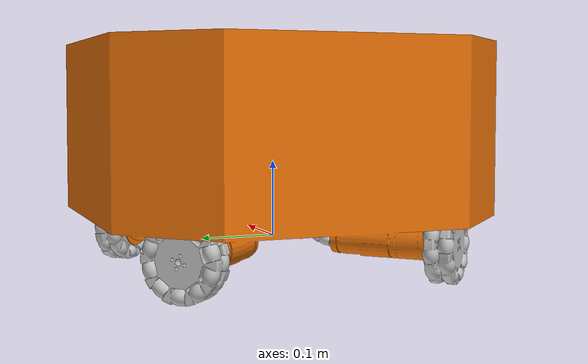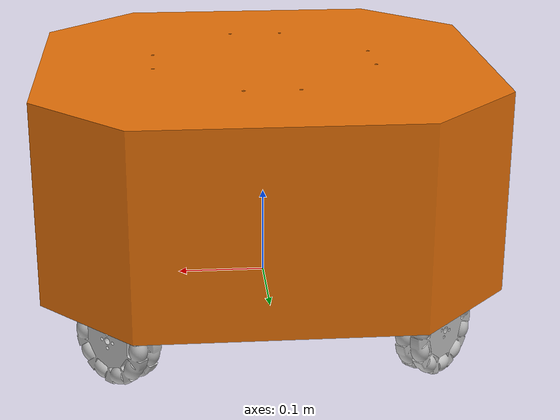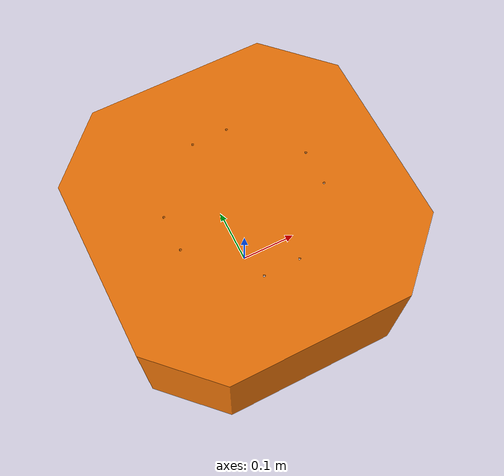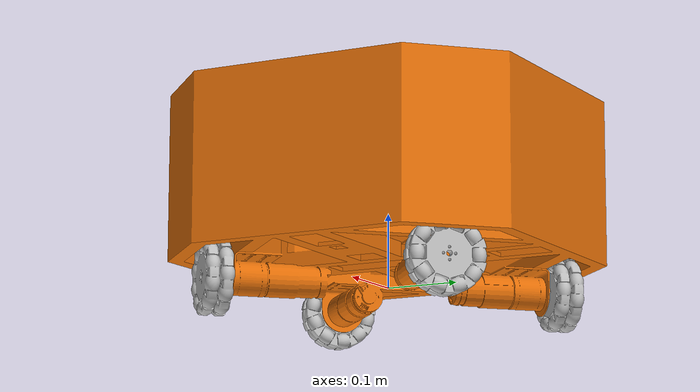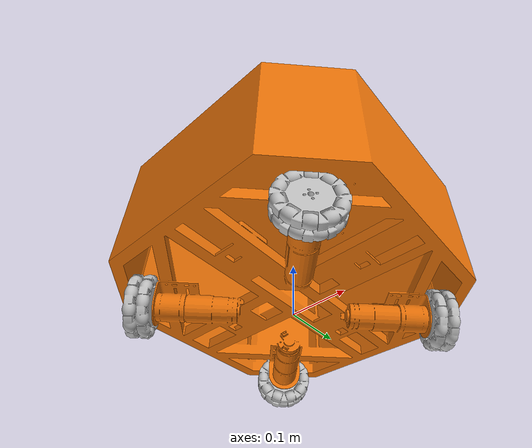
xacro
<?xml version="1.0" encoding="utf-8"?>
<robot xmlns:xacro="http://www.ros.org/wiki/xacro"
  name="assem4">
  <link
    name="base_link">
    <inertial>
      <origin
        xyz="-0.00097158991392642 0.141238649004559 9.0616641219611E-07"
        rpy="0 0 0" />
      <mass
        value="6.18799139893662" />
      <inertia
        ixx="0.190975821617679"
        ixy="4.01901385521376E-08"
        ixz="-5.59571623095739E-08"
        iyy="0.328722262102599"
        iyz="1.23706839134612E-07"
        izz="0.190967615693658" />
    </inertial>
    <visual>
      <origin
        xyz="0 0 0"
        rpy="0 0 0" />
      <geometry>
        <mesh
          filename="package://assem4/meshes/base.stl" />
      </geometry>
      <material
        name="">
        <color
          rgba="0.909803921568627 0.443137254901961 0.0313725490196078 1" />
      </material>
    </visual>
    <collision>
      <origin
        xyz="0 0 0"
        rpy="0 0 0" />
      <geometry>
        <mesh
          filename="package://assem4/meshes/base.stl" />
      </geometry>
    </collision>
  </link>
  <link
    name="roda_1">
    <inertial>
      <origin
        xyz="-0.00298916024684914 -0.0001283245750679 0.00267056079431363"
        rpy="0 0 0" />
      <mass
        value="0.203046400875564" />
      <inertia
        ixx="7.56869067967059E-05"
        ixy="3.42686548790493E-12"
        ixz="-2.28309050451303E-05"
        iyy="5.28560065572393E-05"
        iyz="-3.42686550235183E-12"
        izz="7.56869164080333E-05" />
    </inertial>
    <visual>
      <origin
        xyz="0 0 0"
        rpy="0 0 0" />
      <geometry>
        <mesh
          filename="package://assem4/meshes/roda_1.stl" />
      </geometry>
      <material
        name="">
        <color
          rgba="0.752941176470588 0.752941176470588 0.752941176470588 1" />
      </material>
    </visual>
    <collision>
      <origin
        xyz="0 0 0"
        rpy="0 0 0" />
      <geometry>
        <mesh
          filename="package://assem4/meshes/roda_1.stl" />
      </geometry>
    </collision>
  </link>
  <joint
    name="roda1"
    type="continuous">
    <origin
      xyz="0.17117 0.17085 0.0028922"
      rpy="1.5708 0 0" />
    <parent
      link="base_link" />
    <child
      link="roda_1" />
    <axis
      xyz="0.70711 0 -0.70711" />
  </joint>
  <link
    name="roda_2">
    <inertial>
      <origin
        xyz="-0.000184015036079982 -2.34095917507021E-05 0.000181148183766827"
        rpy="0 0 0" />
      <mass
        value="0.203046400875564" />
      <inertia
        ixx="7.56869054486599E-05"
        ixy="2.08742362905975E-12"
        ixz="2.28309050452597E-05"
        iyy="5.28560065569803E-05"
        iyz="2.08742362598843E-12"
        izz="7.56869177558201E-05" />
    </inertial>
    <visual>
      <origin
        xyz="0 0 0"
        rpy="0 0 0" />
      <geometry>
        <mesh
          filename="package://assem4/meshes/roda_2.stl" />
      </geometry>
      <material
        name="">
        <color
          rgba="0.752941176470588 0.752941176470588 0.752941176470588 1" />
      </material>
    </visual>
    <collision>
      <origin
        xyz="0 0 0"
        rpy="0 0 0" />
      <geometry>
        <mesh
          filename="package://assem4/meshes/roda_2.stl" />
      </geometry>
    </collision>
  </link>
  <joint
    name="roda2"
    type="continuous">
    <origin
      xyz="-0.17083 0.17119 0.0027873"
      rpy="1.5708 0 0" />
    <parent
      link="base_link" />
    <child
      link="roda_2" />
    <axis
      xyz="-0.70711 0 -0.70711" />
  </joint>
  <link
    name="roda_3">
    <inertial>
      <origin
        xyz="0.00301005381289868 -1.40647783379586E-05 -0.00264393355456624"
        rpy="0 0 0" />
      <mass
        value="0.203046400875564" />
      <inertia
        ixx="7.56869047908363E-05"
        ixy="-3.0658083767716E-13"
        ixz="-2.28309050453912E-05"
        iyy="5.28560065567172E-05"
        iyz="3.06580804252446E-13"
        izz="7.56869184133806E-05" />
    </inertial>
    <visual>
      <origin
        xyz="0 0 0"
        rpy="0 0 0" />
      <geometry>
        <mesh
          filename="package://assem4/meshes/roda_3.stl" />
      </geometry>
      <material
        name="">
        <color
          rgba="0.752941176470588 0.752941176470588 0.752941176470588 1" />
      </material>
    </visual>
    <collision>
      <origin
        xyz="0 0 0"
        rpy="0 0 0" />
      <geometry>
        <mesh
          filename="package://assem4/meshes/roda_3.stl" />
      </geometry>
    </collision>
  </link>
  <joint
    name="roda3"
    type="continuous">
    <origin
      xyz="-0.17119 -0.17083 0.0027779"
      rpy="1.5708 0 0" />
    <parent
      link="base_link" />
    <child
      link="roda_3" />
    <axis
      xyz="-0.70711 0 0.70711" />
  </joint>
  <link
    name="roda_4">
    <inertial>
      <origin
        xyz="-0.00268642055638552 0.00016146222194244 -0.00297330049881628"
        rpy="0 0 0" />
      <mass
        value="0.203046400875564" />
      <inertia
        ixx="7.56869148915296E-05"
        ixy="4.22773772736424E-12"
        ixz="2.28309050446226E-05"
        iyy="5.28560065565497E-05"
        iyz="4.22851165936016E-12"
        izz="7.56869083109736E-05" />
    </inertial>
    <visual>
      <origin
        xyz="0 0 0"
        rpy="0 0 0" />
      <geometry>
        <mesh
          filename="package://assem4/meshes/roda_4.stl" />
      </geometry>
      <material
        name="">
        <color
          rgba="0.752941176470588 0.752941176470588 0.752941176470588 1" />
      </material>
    </visual>
    <collision>
      <origin
        xyz="0 0 0"
        rpy="0 0 0" />
      <geometry>
        <mesh
          filename="package://assem4/meshes/roda_4.stl" />
      </geometry>
    </collision>
  </link>
  <joint
    name="roda4"
    type="continuous">
    <origin
      xyz="0.170865182081803 -0.171152061860908 0.0026023881812039"
      rpy="1.5707963267949 0 0" />
    <parent
      link="base_link" />
    <child
      link="roda_4" />
    <axis
      xyz="0.707106781186548 0 0.707106781186547" />
  </joint>
</robot>
